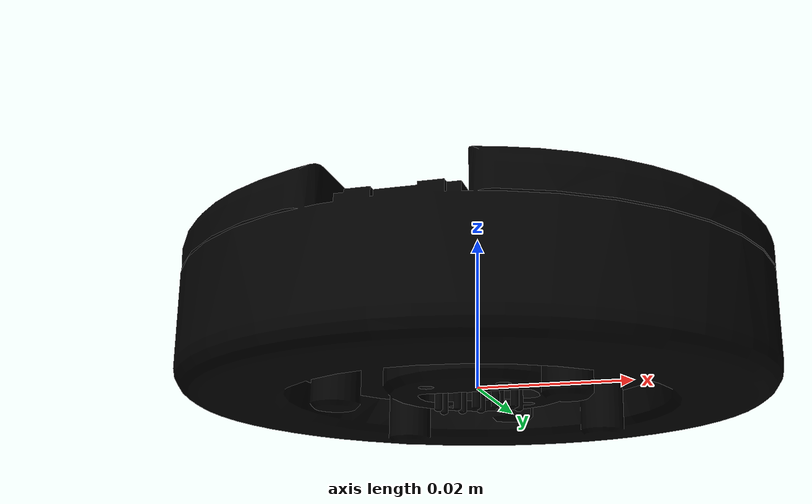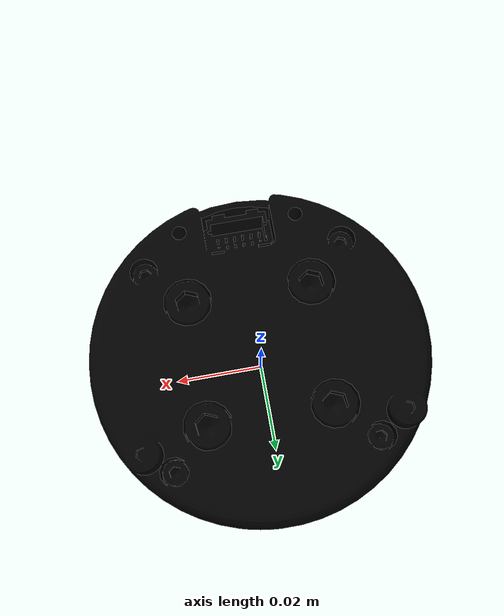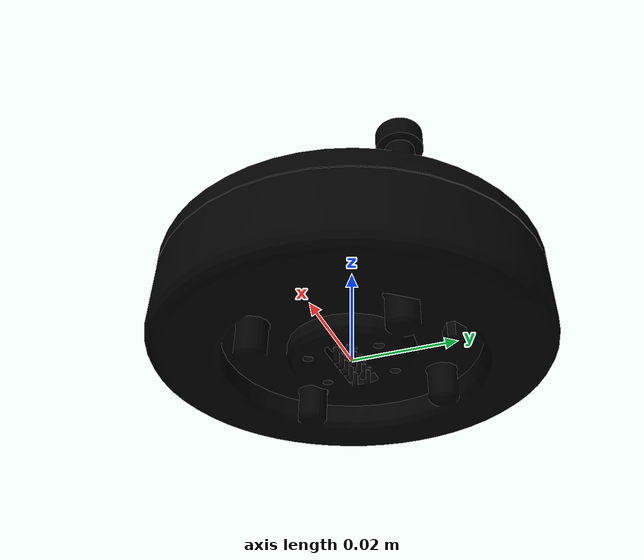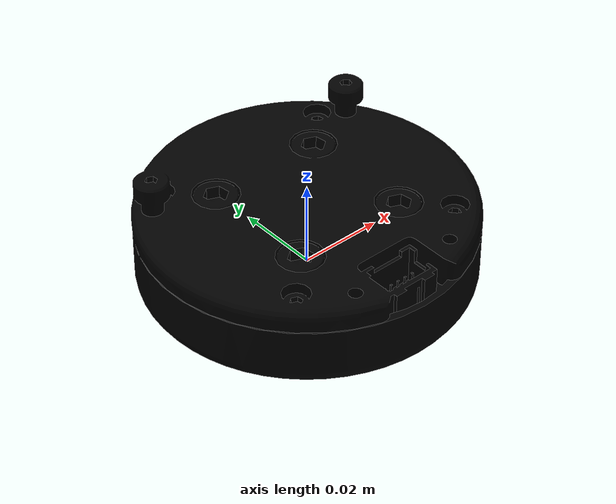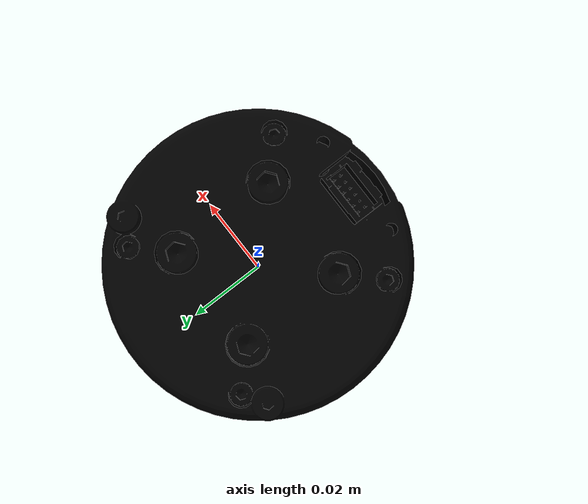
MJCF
<mujoco model="connector_plate">
  <default>
    <default class="visual">
      <geom group="2" type="mesh" contype="0" conaffinity="0"/>
    </default>
    <default class="collision">
      <geom group="3" type="mesh"/>
    </default>
  </default>
  <asset>
    <material name="Material_001" specular="0.5" shininess="0.25" rgba="0.001651 0.001651 0.001651 1.000000"/>
    <mesh file="connector_plate.obj"/>
  </asset>
  <worldbody>
    <body name="connector_plate">
      <geom material="Material_001" mesh="connector_plate" class="visual"/>
      <geom mesh="connector_plate" class="collision"/>
    </body>
  </worldbody>
</mujoco>
